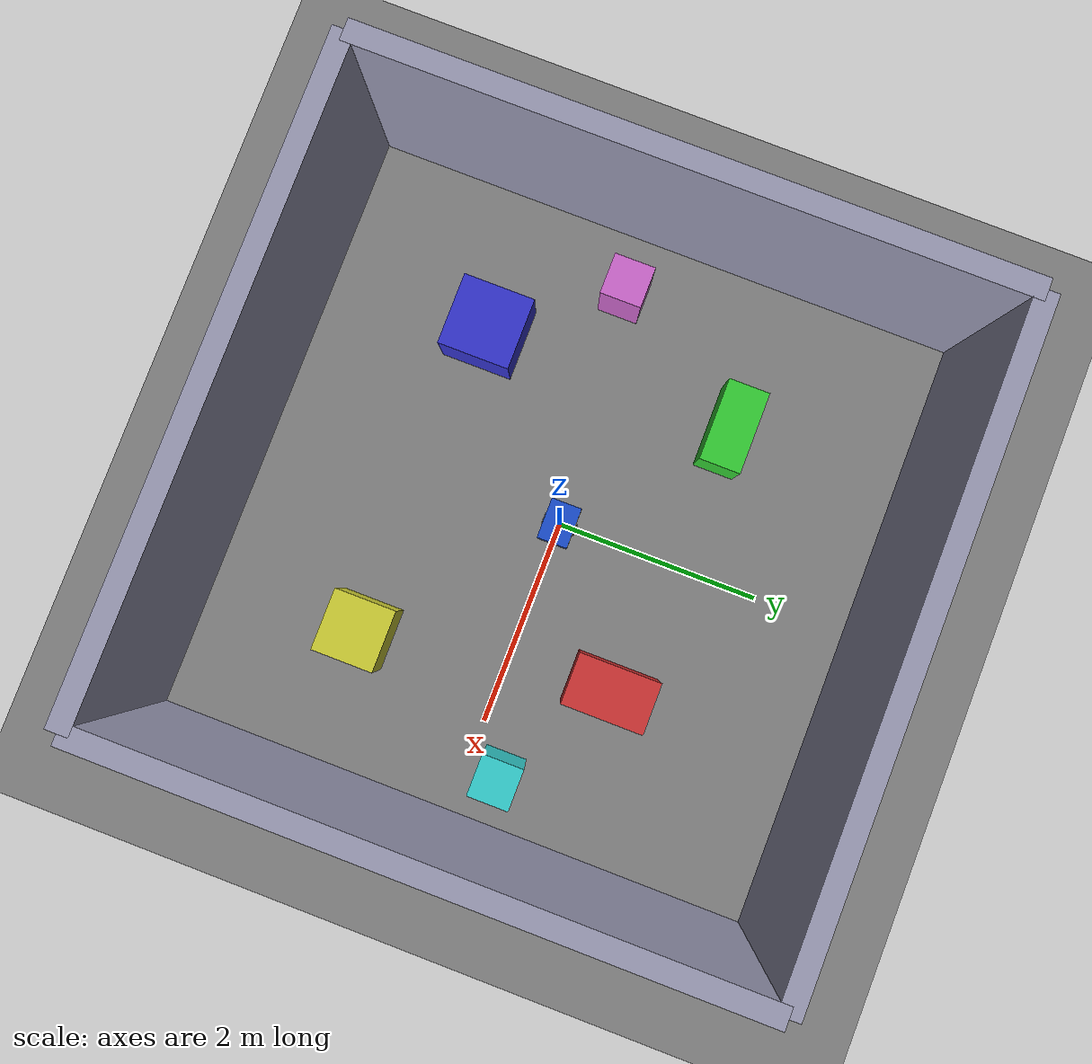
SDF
<?xml version="1.0"?>
<sdf version="1.9">
  <world name="parobot_world">

    <!-- ===================== CORE SYSTEM PLUGINS ===================== -->
    <plugin filename="gz-sim-physics-system"
            name="gz::sim::systems::Physics"/>
    <plugin filename="gz-sim-scene-broadcaster-system"
            name="gz::sim::systems::SceneBroadcaster"/>
    <plugin filename="gz-sim-sensors-system"
            name="gz::sim::systems::Sensors">
      <render_engine>ogre2</render_engine>
    </plugin>

    <!-- ===================== GROUND PLANE ===================== -->
    <model name="ground_plane">
      <static>true</static>
      <link name="link">
        <collision name="collision">
          <geometry>
            <plane>
              <normal>0 0 1</normal>
              <size>20 20</size>
            </plane>
          </geometry>
        </collision>
        <visual name="visual">
          <geometry>
            <plane>
              <normal>0 0 1</normal>
              <size>20 20</size>
            </plane>
          </geometry>
          <material>
            <ambient>0.5 0.5 0.5 1</ambient>
            <diffuse>0.5 0.5 0.5 1</diffuse>
          </material>
        </visual>
      </link>
    </model>

    <!-- ===================== LIGHT ===================== -->
    <light name="sun" type="directional">
      <cast_shadows>true</cast_shadows>
      <pose>0 0 10 0 0 0</pose>
      <diffuse>0.8 0.8 0.8 1</diffuse>
      <specular>0.1 0.1 0.1 1</specular>
      <direction>-0.5 0.5 -1</direction>
    </light>

            <!-- ===================== ROOM WALLS (SMALLER ROOM) ===================== -->
    <!-- Room is roughly 6m x 6m centered at (0,0): walls at x,y = ±3 -->

    <!-- North wall (y = +3) -->
    <model name="wall_north">
      <static>true</static>
      <pose>0 3 1 0 0 0</pose> <!-- center at z=1 -> 2m tall wall -->
      <link name="wall">
        <collision name="collision">
          <geometry>
            <box>
              <size>6 0.2 2</size> <!-- length x thickness x height -->
            </box>
          </geometry>
        </collision>
        <visual name="visual">
          <geometry>
            <box>
              <size>6 0.2 2</size>
            </box>
          </geometry>
          <material>
            <ambient>0.6 0.6 0.7 1</ambient>
            <diffuse>0.6 0.6 0.7 1</diffuse>
          </material>
        </visual>
      </link>
    </model>

    <!-- South wall (y = -3) -->
    <model name="wall_south">
      <static>true</static>
      <pose>0 -3 1 0 0 0</pose>
      <link name="wall">
        <collision name="collision">
          <geometry>
            <box>
              <size>6 0.2 2</size>
            </box>
          </geometry>
        </collision>
        <visual name="visual">
          <geometry>
            <box>
              <size>6 0.2 2</size>
            </box>
          </geometry>
          <material>
            <ambient>0.6 0.6 0.7 1</ambient>
            <diffuse>0.6 0.6 0.7 1</diffuse>
          </material>
        </visual>
      </link>
    </model>

    <!-- East wall (x = +3) -->
    <model name="wall_east">
      <static>true</static>
      <pose>3 0 1 0 0 1.5708</pose> <!-- rotated 90deg -->
      <link name="wall">
        <collision name="collision">
          <geometry>
            <box>
              <size>6 0.2 2</size>
            </box>
          </geometry>
        </collision>
        <visual name="visual">
          <geometry>
            <box>
              <size>6 0.2 2</size>
            </box>
          </geometry>
          <material>
            <ambient>0.6 0.6 0.7 1</ambient>
            <diffuse>0.6 0.6 0.7 1</diffuse>
          </material>
        </visual>
      </link>
    </model>

    <!-- West wall (x = -3) -->
    <model name="wall_west">
      <static>true</static>
      <pose>-3 0 1 0 0 1.5708</pose>
      <link name="wall">
        <collision name="collision">
          <geometry>
            <box>
              <size>6 0.2 2</size>
            </box>
          </geometry>
        </collision>
        <visual name="visual">
          <geometry>
            <box>
              <size>6 0.2 2</size>
            </box>
          </geometry>
          <material>
            <ambient>0.6 0.6 0.7 1</ambient>
            <diffuse>0.6 0.6 0.7 1</diffuse>
          </material>
        </visual>
      </link>
    </model>

    <!-- ===================== OBSTACLES (DENSER FIELD) ===================== -->

    <!-- Near front-right -->
    <model name="obstacle1">
      <static>true</static>
      <pose>1.3 1.0 0.25 0 0 0</pose>
      <link name="box">
        <collision name="collision">
          <geometry>
            <box>
              <size>0.5 0.8 0.5</size>
            </box>
          </geometry>
        </collision>
        <visual name="visual">
          <geometry>
            <box>
              <size>0.5 0.8 0.5</size>
            </box>
          </geometry>
          <material>
            <ambient>0.8 0.2 0.2 1</ambient>
            <diffuse>0.8 0.2 0.2 1</diffuse>
          </material>
        </visual>
      </link>
    </model>

    <!-- Near front-left -->
    <model name="obstacle2">
      <static>true</static>
      <pose>-1.4 1.2 0.25 0 0 0</pose>
      <link name="box">
        <collision name="collision">
          <geometry>
            <box>
              <size>0.8 0.4 0.5</size>
            </box>
          </geometry>
        </collision>
        <visual name="visual">
          <geometry>
            <box>
              <size>0.8 0.4 0.5</size>
            </box>
          </geometry>
          <material>
            <ambient>0.2 0.8 0.2 1</ambient>
            <diffuse>0.2 0.8 0.2 1</diffuse>
          </material>
        </visual>
      </link>
    </model>

    <!-- Back-left -->
    <model name="obstacle3">
      <static>true</static>
      <pose>-1.5 -1.3 0.25 0 0 0</pose>
      <link name="box">
        <collision name="collision">
          <geometry>
            <box>
              <size>0.7 0.7 0.5</size>
            </box>
          </geometry>
        </collision>
        <visual name="visual">
          <geometry>
            <box>
              <size>0.7 0.7 0.5</size>
            </box>
          </geometry>
          <material>
            <ambient>0.2 0.2 0.8 1</ambient>
            <diffuse>0.2 0.2 0.8 1</diffuse>
          </material>
        </visual>
      </link>
    </model>

    <!-- Back-right -->
    <model name="obstacle4">
      <static>true</static>
      <pose>1.6 -1.4 0.25 0 0 0</pose>
      <link name="box">
        <collision name="collision">
          <geometry>
            <box>
              <size>0.6 0.6 0.5</size>
            </box>
          </geometry>
        </collision>
        <visual name="visual">
          <geometry>
            <box>
              <size>0.6 0.6 0.5</size>
            </box>
          </geometry>
          <material>
            <ambient>0.8 0.8 0.2 1</ambient>
            <diffuse>0.8 0.8 0.2 1</diffuse>
          </material>
        </visual>
      </link>
    </model>

    <!-- Small pillar near right wall -->
    <model name="obstacle5">
      <static>true</static>
      <pose>2.4 0.3 0.3 0 0 0</pose>
      <link name="box">
        <collision name="collision">
          <geometry>
            <box>
              <size>0.4 0.4 0.6</size>
            </box>
          </geometry>
        </collision>
        <visual name="visual">
          <geometry>
            <box>
              <size>0.4 0.4 0.6</size>
            </box>
          </geometry>
          <material>
            <ambient>0.2 0.8 0.8 1</ambient>
            <diffuse>0.2 0.8 0.8 1</diffuse>
          </material>
        </visual>
      </link>
    </model>

    <!-- Small pillar near left wall -->
    <model name="obstacle6">
      <static>true</static>
      <pose>-2.3 -0.2 0.3 0 0 0</pose>
      <link name="box">
        <collision name="collision">
          <geometry>
            <box>
              <size>0.4 0.4 0.6</size>
            </box>
          </geometry>
        </collision>
        <visual name="visual">
          <geometry>
            <box>
              <size>0.4 0.4 0.6</size>
            </box>
          </geometry>
          <material>
            <ambient>0.8 0.4 0.8 1</ambient>
            <diffuse>0.8 0.4 0.8 1</diffuse>
          </material>
        </visual>
      </link>
    </model>

    <!-- ===================== PAROBOT MODEL ===================== -->
    <model name="parobot">
      <pose>0 0 0 0 0 0</pose>
      <static>false</static>

      <!-- ---------- Chassis ---------- -->
      <link name="base_link">
        <pose>0 0 0.12 0 0 0</pose>
        <inertial>
          <mass>5.0</mass>
          <inertia>
            <ixx>0.1</ixx><ixy>0.0</ixy><ixz>0.0</ixz>
            <iyy>0.1</iyy><iyz>0.0</iyz>
            <izz>0.1</izz>
          </inertia>
        </inertial>

        <collision name="collision">
          <geometry>
            <box>
              <size>0.4 0.3 0.2</size>
            </box>
          </geometry>
        </collision>

        <visual name="visual">
          <geometry>
            <box>
              <size>0.4 0.3 0.2</size>
            </box>
          </geometry>
          <material>
            <ambient>0.1 0.3 0.8 1</ambient>
            <diffuse>0.1 0.3 0.8 1</diffuse>
          </material>
        </visual>

        <!-- LiDAR sensor -->
        <sensor name="lidar" type="gpu_lidar">
          <pose>0.15 0 0.18 0 0 0</pose>
          <topic>lidar</topic>
          <update_rate>10</update_rate>
          <ray>
            <scan>
              <horizontal>
                <samples>720</samples>
                <resolution>1</resolution>
                <min_angle>-3.14159</min_angle>
                <max_angle> 3.14159</max_angle>
              </horizontal>
              <vertical>
                <samples>1</samples>
                <resolution>1</resolution>
                <min_angle>0</min_angle>
                <max_angle>0</max_angle>
              </vertical>
            </scan>
            <range>
              <min>0.1</min>
              <max>8.0</max>
              <resolution>0.01</resolution>
            </range>
          </ray>
          <always_on>1</always_on>
          <visualize>true</visualize>
        </sensor>
      </link>

      <!-- ---------- Left wheel ---------- -->
      <link name="left_wheel">
        <!-- Position relative to model (parobot) -->
        <pose>0 0.15 0.06 0 0 0</pose>
        <inertial>
          <mass>0.5</mass>
          <inertia>
            <ixx>0.01</ixx><ixy>0.0</ixy><ixz>0.0</ixz>
            <iyy>0.01</iyy><iyz>0.0</iyz>
            <izz>0.01</izz>
          </inertia>
        </inertial>

        <!-- Collision: cylinder rotated 90° around X so axis is Y -->
        <collision name="collision">
          <pose>0 0 0 1.5708 0 0</pose>
          <geometry>
            <cylinder>
              <radius>0.06</radius>
              <length>0.03</length>
            </cylinder>
          </geometry>
          <surface>
            <friction>
              <ode>
                <mu>1.0</mu>
                <mu2>1.0</mu2>
              </ode>
            </friction>
          </surface>
        </collision>

        <!-- Main wheel visual -->
        <visual name="visual">
          <pose>0 0 0 1.5708 0 0</pose>
          <geometry>
            <cylinder>
              <radius>0.06</radius>
              <length>0.03</length>
            </cylinder>
          </geometry>
          <material>
            <ambient>0.05 0.05 0.05 1</ambient>
            <diffuse>0.05 0.05 0.05 1</diffuse>
          </material>
        </visual>

        <!-- Spoke line so you can see rotation -->
        <visual name="spoke">
          <pose>0 0 0 1.5708 0 0</pose>
          <geometry>
            <!-- A thin bar across the wheel -->
            <box>
              <size>0.12 0.005 0.01</size>
            </box>
          </geometry>
          <material>
            <ambient>0.9 0.9 0.2 1</ambient>
            <diffuse>0.9 0.9 0.2 1</diffuse>
          </material>
        </visual>
      </link>

      <!-- ---------- Right wheel ---------- -->
      <link name="right_wheel">
        <pose>0 -0.15 0.06 0 0 0</pose>
        <inertial>
          <mass>0.5</mass>
          <inertia>
            <ixx>0.01</ixx><ixy>0.0</ixy><ixz>0.0</ixz>
            <iyy>0.01</iyy><iyz>0.0</iyz>
            <izz>0.01</izz>
          </inertia>
        </inertial>

        <collision name="collision">
          <pose>0 0 0 1.5708 0 0</pose>
          <geometry>
            <cylinder>
              <radius>0.06</radius>
              <length>0.03</length>
            </cylinder>
          </geometry>
          <surface>
            <friction>
              <ode>
                <mu>1.0</mu>
                <mu2>1.0</mu2>
              </ode>
            </friction>
          </surface>
        </collision>

        <visual name="visual">
          <pose>0 0 0 1.5708 0 0</pose>
          <geometry>
            <cylinder>
              <radius>0.06</radius>
              <length>0.03</length>
            </cylinder>
          </geometry>
          <material>
            <ambient>0.05 0.05 0.05 1</ambient>
            <diffuse>0.05 0.05 0.05 1</diffuse>
          </material>
        </visual>

        <visual name="spoke">
          <pose>0 0 0 1.5708 0 0</pose>
          <geometry>
            <box>
              <size>0.12 0.005 0.01</size>
            </box>
          </geometry>
          <material>
            <ambient>0.9 0.9 0.2 1</ambient>
            <diffuse>0.9 0.9 0.2 1</diffuse>
          </material>
        </visual>
      </link>

      <!-- ---------- Wheel joints (NO EXTRA POSE HERE) ---------- -->
      <joint name="left_wheel_joint" type="revolute">
        <parent>base_link</parent>
        <child>left_wheel</child>
        <!-- Joint at the wheel link origin, so no extra offset -->
        <pose>0 0 0 0 0 0</pose>
        <axis>
          <!-- Rotate about Y so wheel rolls along X -->
          <xyz>0 1 0</xyz>
          <limit>
            <lower>-1e16</lower>
            <upper> 1e16</upper>
          </limit>
        </axis>
      </joint>

      <joint name="right_wheel_joint" type="revolute">
        <parent>base_link</parent>
        <child>right_wheel</child>
        <pose>0 0 0 0 0 0</pose>
        <axis>
          <xyz>0 1 0</xyz>
          <limit>
            <lower>-1e16</lower>
            <upper> 1e16</upper>
          </limit>
        </axis>
      </joint>

            <!-- ---------- Diff drive plugin ---------- -->
      <plugin filename="gz-sim-diff-drive-system"
              name="gz::sim::systems::DiffDrive">

        <left_joint>left_wheel_joint</left_joint>
        <right_joint>right_wheel_joint</right_joint>

        <wheel_separation>0.3</wheel_separation>
        <wheel_radius>0.06</wheel_radius>

        <!-- ✅ Use simple, global topic names -->
        <topic>/cmd_vel</topic>
        <odom_topic>/odometry</odom_topic>

        <!-- Frames (only for TF, not motion) -->
        <frame_id>odom</frame_id>
        <child_frame_id>base_link</child_frame_id>
        <odom_publish_frequency>20</odom_publish_frequency>

        <max_linear_velocity>2.0</max_linear_velocity>
        <max_angular_velocity>4.0</max_angular_velocity>
      </plugin>

    </model>

  </world>
</sdf>
